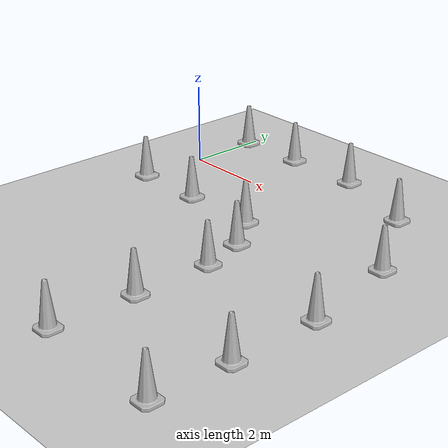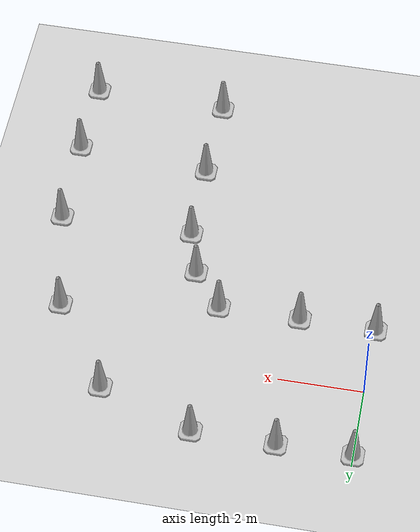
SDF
<sdf version="1.6">
 <world name="default">
  <light name="sun" type="directional">
   <pose>0 0 10 0 -0 0</pose>
   <diffuse>0.8 0.8 0.8 1</diffuse>
   <specular>0.2 0.2 0.2 1</specular>
   <attenuation>
    <range>1000</range>
    <constant>0.9</constant>
    <linear>0.01</linear>
    <quadratic>0.001</quadratic>
   </attenuation>
   <direction>-0.5 0.1 -0.9</direction>
  </light>
  <model name="ground_plane">
   <static>1</static>
   <link name="link">
    <collision name="collision">
     <geometry><plane><normal>0 0 1</normal><size>100 100</size></plane></geometry>
     <surface>
      <contact><collide_bitmask>65535</collide_bitmask></contact>
      <friction><ode><mu>100</mu><mu2>50</mu2></ode></friction>
     </surface>
    </collision>
    <visual name="visual">
     <cast_shadows>0</cast_shadows>
     <geometry><plane><normal>0 0 1</normal><size>100 100</size></plane></geometry>
     <material>
      <script><uri>file://media/materials/scripts/gazebo.material</uri><name>Gazebo/Grey</name></script>
     </material>
    </visual>
   </link>
  </model>
  <gravity>0 0 -9.8</gravity>
  <magnetic_field>6e-06 2.3e-05 -4.2e-05</magnetic_field>
  <atmosphere type="adiabatic"/>
  <physics name="default_physics" default="0" type="ode">
   <max_step_size>0.001</max_step_size>
   <real_time_factor>1</real_time_factor>
   <real_time_update_rate>1000</real_time_update_rate>
  </physics>
  <scene><ambient>0.4 0.4 0.4 1</ambient><background>0.7 0.7 0.7 1</background><shadows>1</shadows></scene>
  <audio><device>default</device></audio>
  <spherical_coordinates>
   <surface_model>EARTH_WGS84</surface_model>
   <latitude_deg>0</latitude_deg>
   <longitude_deg>0</longitude_deg>
   <elevation>0</elevation>
   <heading_deg>0</heading_deg>
  </spherical_coordinates>
  <model name="Construction Cone">
   <link name="link">
    <collision name="collision">
     <geometry>
      <mesh><scale>10 10 10</scale><uri>model://construction_cone/meshes/construction_cone.dae</uri></mesh>
     </geometry>
    </collision>
    <visual name="visual">
     <geometry>
      <mesh><scale>10 10 10</scale><uri>model://construction_cone/meshes/construction_cone.dae</uri></mesh>
     </geometry>
    </visual>
    <inertial>
     <inertia><ixx>1</ixx><ixy>0</ixy><ixz>0</ixz><iyy>1</iyy><iyz>0</iyz><izz>1</izz></inertia>
     <mass>1</mass>
    </inertial>
   </link>
   <pose>0.00815 1.73537 -0 0 -1e-06 0</pose>
  </model>
  <model name="Construction Cone_0">
   <link name="link">
    <collision name="collision">
     <geometry>
      <mesh><scale>10 10 10</scale><uri>model://construction_cone/meshes/construction_cone.dae</uri></mesh>
     </geometry>
    </collision>
    <visual name="visual">
     <geometry>
      <mesh><scale>10 10 10</scale><uri>model://construction_cone/meshes/construction_cone.dae</uri></mesh>
     </geometry>
    </visual>
    <inertial>
     <inertia><ixx>1</ixx><ixy>0</ixy><ixz>0</ixz><iyy>1</iyy><iyz>0</iyz><izz>1</izz></inertia>
     <mass>1</mass>
    </inertial>
   </link>
   <pose>-0.031285 -1.72341 -6e-06 -4e-06 1e-06 0</pose>
  </model>
  <model name="Construction Cone_clone">
   <link name="link">
    <collision name="collision">
     <geometry>
      <mesh><scale>10 10 10</scale><uri>model://construction_cone/meshes/construction_cone.dae</uri></mesh>
     </geometry>
    </collision>
    <visual name="visual">
     <geometry>
      <mesh><scale>10 10 10</scale><uri>model://construction_cone/meshes/construction_cone.dae</uri></mesh>
     </geometry>
    </visual>
    <inertial>
     <inertia><ixx>1</ixx><ixy>0</ixy><ixz>0</ixz><iyy>1</iyy><iyz>0</iyz><izz>1</izz></inertia>
     <mass>1</mass>
    </inertial>
   </link>
   <pose>1.76234 1.76304 -0 0 -0 0</pose>
  </model>
  <model name="Construction Cone_clone_0">
   <link name="link">
    <collision name="collision">
     <geometry>
      <mesh><scale>10 10 10</scale><uri>model://construction_cone/meshes/construction_cone.dae</uri></mesh>
     </geometry>
    </collision>
    <visual name="visual">
     <geometry>
      <mesh><scale>10 10 10</scale><uri>model://construction_cone/meshes/construction_cone.dae</uri></mesh>
     </geometry>
    </visual>
    <inertial>
     <inertia><ixx>1</ixx><ixy>0</ixy><ixz>0</ixz><iyy>1</iyy><iyz>0</iyz><izz>1</izz></inertia>
     <mass>1</mass>
    </inertial>
   </link>
   <pose>1.76821 -1.72272 -1e-05 -1e-06 0 0</pose>
  </model>
  <model name="Construction Cone_clone_1">
   <link name="link">
    <collision name="collision">
     <geometry>
      <mesh><scale>10 10 10</scale><uri>model://construction_cone/meshes/construction_cone.dae</uri></mesh>
     </geometry>
    </collision>
    <visual name="visual">
     <geometry>
      <mesh><scale>10 10 10</scale><uri>model://construction_cone/meshes/construction_cone.dae</uri></mesh>
     </geometry>
    </visual>
    <inertial>
     <inertia><ixx>1</ixx><ixy>0</ixy><ixz>0</ixz><iyy>1</iyy><iyz>0</iyz><izz>1</izz></inertia>
     <mass>1</mass>
    </inertial>
   </link>
   <pose>3.69907 -1.71604 -0 0 -0 0</pose>
  </model>
  <model name="Construction Cone_clone_2">
   <link name="link">
    <collision name="collision">
     <geometry>
      <mesh><scale>10 10 10</scale><uri>model://construction_cone/meshes/construction_cone.dae</uri></mesh>
     </geometry>
    </collision>
    <visual name="visual">
     <geometry>
      <mesh><scale>10 10 10</scale><uri>model://construction_cone/meshes/construction_cone.dae</uri></mesh>
     </geometry>
    </visual>
    <inertial>
     <inertia><ixx>1</ixx><ixy>0</ixy><ixz>0</ixz><iyy>1</iyy><iyz>0</iyz><izz>1</izz></inertia>
     <mass>1</mass>
    </inertial>
   </link>
   <pose>3.71886 1.75861 -1e-05 -0 -0 -0</pose>
  </model>
  <model name="Construction Cone_clone_3">
   <link name="link">
    <collision name="collision">
     <geometry>
      <mesh><scale>10 10 10</scale><uri>model://construction_cone/meshes/construction_cone.dae</uri></mesh>
     </geometry>
    </collision>
    <visual name="visual">
     <geometry>
      <mesh><scale>10 10 10</scale><uri>model://construction_cone/meshes/construction_cone.dae</uri></mesh>
     </geometry>
    </visual>
    <inertial>
     <inertia><ixx>1</ixx><ixy>0</ixy><ixz>0</ixz><iyy>1</iyy><iyz>0</iyz><izz>1</izz></inertia>
     <mass>1</mass>
    </inertial>
   </link>
   <pose>5.97384 0.966608 -1e-05 -1e-06 0 0</pose>
  </model>
  <model name="Construction Cone_clone_4">
   <link name="link">
    <collision name="collision">
     <geometry>
      <mesh><scale>10 10 10</scale><uri>model://construction_cone/meshes/construction_cone.dae</uri></mesh>
     </geometry>
    </collision>
    <visual name="visual">
     <geometry>
      <mesh><scale>10 10 10</scale><uri>model://construction_cone/meshes/construction_cone.dae</uri></mesh>
     </geometry>
    </visual>
    <inertial>
     <inertia><ixx>1</ixx><ixy>0</ixy><ixz>0</ixz><iyy>1</iyy><iyz>0</iyz><izz>1</izz></inertia>
     <mass>1</mass>
    </inertial>
   </link>
   <pose>7.38725 -1.13303 0 -0 -0 -0</pose>
  </model>
  <model name="Construction Cone_clone_5">
   <link name="link">
    <collision name="collision">
     <geometry>
      <mesh><scale>10 10 10</scale><uri>model://construction_cone/meshes/construction_cone.dae</uri></mesh>
     </geometry>
    </collision>
    <visual name="visual">
     <geometry>
      <mesh><scale>10 10 10</scale><uri>model://construction_cone/meshes/construction_cone.dae</uri></mesh>
     </geometry>
    </visual>
    <inertial>
     <inertia><ixx>1</ixx><ixy>0</ixy><ixz>0</ixz><iyy>1</iyy><iyz>0</iyz><izz>1</izz></inertia>
     <mass>1</mass>
    </inertial>
   </link>
   <pose>7.93074 -3.68169 -1e-05 -1e-06 0 0</pose>
  </model>
  <model name="Construction Cone_clone_6">
   <link name="link">
    <collision name="collision">
     <geometry>
      <mesh><scale>10 10 10</scale><uri>model://construction_cone/meshes/construction_cone.dae</uri></mesh>
     </geometry>
    </collision>
    <visual name="visual">
     <geometry>
      <mesh><scale>10 10 10</scale><uri>model://construction_cone/meshes/construction_cone.dae</uri></mesh>
     </geometry>
    </visual>
    <inertial>
     <inertia><ixx>1</ixx><ixy>0</ixy><ixz>0</ixz><iyy>1</iyy><iyz>0</iyz><izz>1</izz></inertia>
     <mass>1</mass>
    </inertial>
   </link>
   <pose>4.41183 -2.61818 -0 0 -1e-06 0</pose>
  </model>
  <model name="Construction Cone_clone_7">
   <link name="link">
    <collision name="collision">
     <geometry>
      <mesh><scale>10 10 10</scale><uri>model://construction_cone/meshes/construction_cone.dae</uri></mesh>
     </geometry>
    </collision>
    <visual name="visual">
     <geometry>
      <mesh><scale>10 10 10</scale><uri>model://construction_cone/meshes/construction_cone.dae</uri></mesh>
     </geometry>
    </visual>
    <inertial>
     <inertia><ixx>1</ixx><ixy>0</ixy><ixz>0</ixz><iyy>1</iyy><iyz>0</iyz><izz>1</izz></inertia>
     <mass>1</mass>
    </inertial>
   </link>
   <pose>4.73643 -3.73197 -4e-06 3e-06 -0 0</pose>
  </model>
  <model name="Construction Cone_clone_7_clone">
   <link name="link">
    <collision name="collision">
     <geometry>
      <mesh><scale>10 10 10</scale><uri>model://construction_cone/meshes/construction_cone.dae</uri></mesh>
     </geometry>
    </collision>
    <visual name="visual">
     <geometry>
      <mesh><scale>10 10 10</scale><uri>model://construction_cone/meshes/construction_cone.dae</uri></mesh>
     </geometry>
    </visual>
    <inertial>
     <inertia><ixx>1</ixx><ixy>0</ixy><ixz>0</ixz><iyy>1</iyy><iyz>0</iyz><izz>1</izz></inertia>
     <mass>1</mass>
    </inertial>
   </link>
   <pose>4.74554 -5.68098 -1e-06 2e-06 2e-06 0</pose>
  </model>
  <model name="Construction Cone_clone_7_clone_0">
   <link name="link">
    <collision name="collision">
     <geometry>
      <mesh><scale>10 10 10</scale><uri>model://construction_cone/meshes/construction_cone.dae</uri></mesh>
     </geometry>
    </collision>
    <visual name="visual">
     <geometry>
      <mesh><scale>10 10 10</scale><uri>model://construction_cone/meshes/construction_cone.dae</uri></mesh>
     </geometry>
    </visual>
    <inertial>
     <inertia><ixx>1</ixx><ixy>0</ixy><ixz>0</ixz><iyy>1</iyy><iyz>0</iyz><izz>1</izz></inertia>
     <mass>1</mass>
    </inertial>
   </link>
   <pose>7.95382 -5.89703 -0 0 -1e-06 0</pose>
  </model>
  <model name="Construction Cone_clone_7_clone_1">
   <link name="link">
    <collision name="collision">
     <geometry>
      <mesh><scale>10 10 10</scale><uri>model://construction_cone/meshes/construction_cone.dae</uri></mesh>
     </geometry>
    </collision>
    <visual name="visual">
     <geometry>
      <mesh><scale>10 10 10</scale><uri>model://construction_cone/meshes/construction_cone.dae</uri></mesh>
     </geometry>
    </visual>
    <inertial>
     <inertia><ixx>1</ixx><ixy>0</ixy><ixz>0</ixz><iyy>1</iyy><iyz>0</iyz><izz>1</izz></inertia>
     <mass>1</mass>
    </inertial>
   </link>
   <pose>7.89567 -7.78691 0 -0 -0 -0</pose>
  </model>
  <model name="Construction Cone_clone_7_clone_2">
   <link name="link">
    <collision name="collision">
     <geometry>
      <mesh><scale>10 10 10</scale><uri>model://construction_cone/meshes/construction_cone.dae</uri></mesh>
     </geometry>
    </collision>
    <visual name="visual">
     <geometry>
      <mesh><scale>10 10 10</scale><uri>model://construction_cone/meshes/construction_cone.dae</uri></mesh>
     </geometry>
    </visual>
    <inertial>
     <inertia><ixx>1</ixx><ixy>0</ixy><ixz>0</ixz><iyy>1</iyy><iyz>0</iyz><izz>1</izz></inertia>
     <mass>1</mass>
    </inertial>
   </link>
   <pose>4.69132 -7.73558 -0 0 -0 0</pose>
  </model>
 </world>
</sdf>
